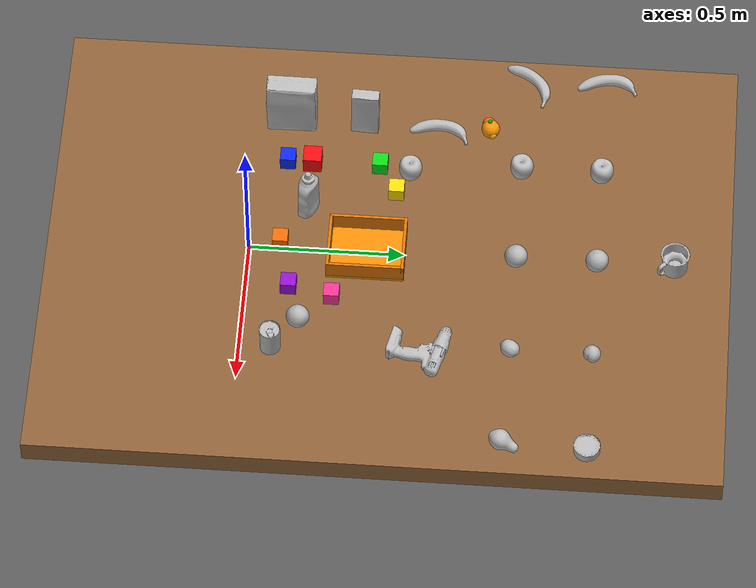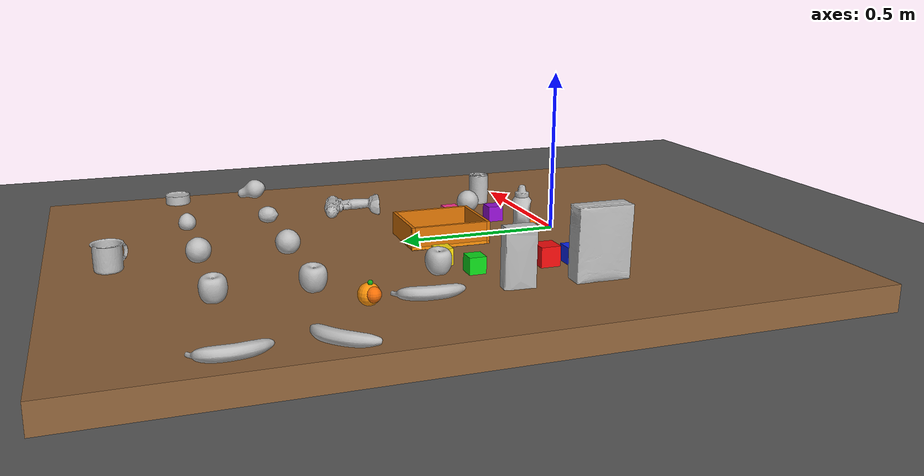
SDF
<?xml version="1.0"?>
<sdf version="1.7">
  <world name="ur3_pick_place">
    <physics name="baseline_physics" type="ode">
      <max_step_size>0.001</max_step_size>
      <real_time_factor>1.0</real_time_factor>
      <gravity>0 0 -9.81</gravity>
    </physics>

    <plugin filename="libignition-gazebo-physics-system.so"
            name="ignition::gazebo::systems::Physics"/>
    <plugin filename="libignition-gazebo-user-commands-system.so"
            name="ignition::gazebo::systems::UserCommands"/>
    <plugin filename="libignition-gazebo-scene-broadcaster-system.so"
            name="ignition::gazebo::systems::SceneBroadcaster"/>
    <plugin filename="libignition-gazebo-sensors-system.so"
            name="ignition::gazebo::systems::Sensors">
      <render_engine>ogre2</render_engine>
    </plugin>
    <plugin filename="libignition-gazebo-contact-system.so"
            name="ignition::gazebo::systems::Contact"/>

    <scene>
      <ambient>0.45 0.45 0.45 1</ambient>
      <background>0.75 0.80 0.85 1</background>
      <shadows>true</shadows>
    </scene>

    <light name="key_light" type="directional">
      <pose>0 0 2 0 0 0</pose>
      <cast_shadows>true</cast_shadows>
      <diffuse>0.9 0.9 0.9 1</diffuse>
      <specular>0.2 0.2 0.2 1</specular>
      <direction>-0.4 0.2 -1.0</direction>
    </light>

    <model name="ground_plane">
      <static>true</static>
      <pose>0 0 -0.081 0 0 0</pose>
      <link name="link">
        <collision name="collision">
          <geometry><plane><normal>0 0 1</normal><size>10 10</size></plane></geometry>
        </collision>
        <visual name="visual">
          <geometry><plane><normal>0 0 1</normal><size>10 10</size></plane></geometry>
          <material><ambient>0.25 0.25 0.25 1</ambient><diffuse>0.35 0.35 0.35 1</diffuse></material>
        </visual>
      </link>
      <plugin filename="ignition-gazebo-label-system" name="ignition::gazebo::systems::Label"><label>41</label></plugin>
    </model>

    <model name="work_table">
      <static>true</static>
      <pose>0 0.45 -0.04 0 0 0</pose>
      <link name="table_link">
        <collision name="collision">
          <geometry><box><size>1.6 2.2 0.08</size></box></geometry>
        </collision>
        <visual name="visual">
          <geometry><box><size>1.6 2.2 0.08</size></box></geometry>
          <material><ambient>0.45 0.30 0.18 1</ambient><diffuse>0.55 0.38 0.22 1</diffuse></material>
        </visual>
      </link>
      <plugin filename="ignition-gazebo-label-system" name="ignition::gazebo::systems::Label"><label>40</label></plugin>
    </model>

    <model name="red_cube">
      <!-- Pick slot: left of the robot (-X) and forward (+Y). -->
      <pose>-0.34 0.18 0.03 0 0 0</pose>
      <link name="cube_link">
        <inertial><mass>0.08</mass><inertia><ixx>0.000048</ixx><iyy>0.000048</iyy><izz>0.000048</izz></inertia></inertial>
        <collision name="collision">
          <geometry><box><size>0.06 0.06 0.06</size></box></geometry>
          <surface><friction><ode><mu>1.2</mu><mu2>1.2</mu2></ode></friction></surface>
        </collision>
        <visual name="visual">
          <geometry><box><size>0.06 0.06 0.06</size></box></geometry>
          <material><ambient>0.8 0.03 0.03 1</ambient><diffuse>0.95 0.05 0.05 1</diffuse></material>
        </visual>
      </link>
      <!-- Ground-truth oracle for perception-layer validation. -->
      <plugin filename="ignition-gazebo-pose-publisher-system"
              name="gz::sim::systems::PosePublisher">
        <publish_link_pose>false</publish_link_pose>
        <publish_collision_pose>false</publish_collision_pose>
        <publish_visual_pose>false</publish_visual_pose>
        <publish_nested_model_pose>false</publish_nested_model_pose>
        <use_pose_vector_msg>true</use_pose_vector_msg>
        <static_publisher>false</static_publisher>
        <update_frequency>15</update_frequency>
      </plugin>
      <plugin filename="ignition-gazebo-label-system" name="ignition::gazebo::systems::Label"><label>1</label></plugin>
    </model>

    <model name="blue_cube">
      <pose>-0.34 0.10 0.025 0 0 0</pose>
      <link name="cube_link">
        <inertial><mass>0.06</mass><inertia><ixx>0.000025</ixx><iyy>0.000025</iyy><izz>0.000025</izz></inertia></inertial>
        <collision name="collision"><geometry><box><size>0.05 0.05 0.05</size></box></geometry></collision>
        <visual name="visual"><geometry><box><size>0.05 0.05 0.05</size></box></geometry><material><ambient>0.03 0.10 0.8 1</ambient><diffuse>0.05 0.15 0.95 1</diffuse></material></visual>
      </link>
      <plugin filename="ignition-gazebo-label-system" name="ignition::gazebo::systems::Label"><label>2</label></plugin>
    </model>

    <model name="green_cube">
      <pose>-0.34 0.40 0.025 0 0 0</pose>
      <link name="cube_link">
        <inertial><mass>0.06</mass><inertia><ixx>0.000025</ixx><iyy>0.000025</iyy><izz>0.000025</izz></inertia></inertial>
        <collision name="collision"><geometry><box><size>0.05 0.05 0.05</size></box></geometry></collision>
        <visual name="visual"><geometry><box><size>0.05 0.05 0.05</size></box></geometry><material><ambient>0.03 0.65 0.08 1</ambient><diffuse>0.05 0.85 0.10 1</diffuse></material></visual>
      </link>
      <plugin filename="ignition-gazebo-label-system" name="ignition::gazebo::systems::Label"><label>3</label></plugin>
    </model>

    <model name="yellow_cube">
      <pose>-0.24 0.46 0.025 0 0 0</pose>
      <link name="cube_link">
        <inertial><mass>0.06</mass><inertia><ixx>0.000025</ixx><iyy>0.000025</iyy><izz>0.000025</izz></inertia></inertial>
        <collision name="collision"><geometry><box><size>0.05 0.05 0.05</size></box></geometry></collision>
        <visual name="visual"><geometry><box><size>0.05 0.05 0.05</size></box></geometry><material><ambient>0.80 0.68 0.02 1</ambient><diffuse>0.98 0.86 0.04 1</diffuse></material></visual>
      </link>
      <plugin filename="ignition-gazebo-label-system" name="ignition::gazebo::systems::Label"><label>4</label></plugin>
    </model>

    <model name="orange_cube">
      <pose>-0.02 0.10 0.025 0 0 0</pose>
      <link name="cube_link">
        <inertial><mass>0.06</mass><inertia><ixx>0.000025</ixx><iyy>0.000025</iyy><izz>0.000025</izz></inertia></inertial>
        <collision name="collision"><geometry><box><size>0.05 0.05 0.05</size></box></geometry></collision>
        <visual name="visual"><geometry><box><size>0.05 0.05 0.05</size></box></geometry><material><ambient>0.88 0.28 0.01 1</ambient><diffuse>1.00 0.42 0.02 1</diffuse></material></visual>
      </link>
      <plugin filename="ignition-gazebo-label-system" name="ignition::gazebo::systems::Label"><label>5</label></plugin>
    </model>

    <model name="purple_cube">
      <pose>0.15 0.14 0.025 0 0 0</pose>
      <link name="cube_link">
        <inertial><mass>0.06</mass><inertia><ixx>0.000025</ixx><iyy>0.000025</iyy><izz>0.000025</izz></inertia></inertial>
        <collision name="collision"><geometry><box><size>0.05 0.05 0.05</size></box></geometry></collision>
        <visual name="visual"><geometry><box><size>0.05 0.05 0.05</size></box></geometry><material><ambient>0.42 0.03 0.62 1</ambient><diffuse>0.58 0.06 0.82 1</diffuse></material></visual>
      </link>
      <plugin filename="ignition-gazebo-label-system" name="ignition::gazebo::systems::Label"><label>6</label></plugin>
    </model>

    <model name="pink_cube">
      <pose>0.18 0.28 0.025 0 0 0</pose>
      <link name="cube_link">
        <inertial><mass>0.06</mass><inertia><ixx>0.000025</ixx><iyy>0.000025</iyy><izz>0.000025</izz></inertia></inertial>
        <collision name="collision"><geometry><box><size>0.05 0.05 0.05</size></box></geometry></collision>
        <visual name="visual"><geometry><box><size>0.05 0.05 0.05</size></box></geometry><material><ambient>0.88 0.10 0.42 1</ambient><diffuse>1.00 0.20 0.58 1</diffuse></material></visual>
      </link>
      <plugin filename="ignition-gazebo-label-system" name="ignition::gazebo::systems::Label"><label>7</label></plugin>
    </model>

    <!-- Selected CC BY 4.0 meshes from ai-habitat/ycb.  Visual origins are
         re-centered here; lightweight primitive collisions keep Gazebo fast. -->
    <model name="ycb_cracker_box">
      <pose>-0.50 0.10 0.106710 0 0 0</pose>
      <link name="object_link">
        <inertial><mass>0.18</mass><inertia><ixx>0.00108</ixx><iyy>0.00076</iyy><izz>0.00048</izz></inertia></inertial>
        <collision name="collision"><geometry><box><size>0.071720 0.163986 0.213421</size></box></geometry><surface><friction><ode><mu>1.1</mu><mu2>1.1</mu2></ode></friction></surface></collision>
        <visual name="ycb_visual"><pose>0.012893 0.014149 -0.103525 0 0 0</pose><geometry><mesh><uri>../models/ycb/003_cracker_box/003_cracker_box.obj</uri></mesh></geometry></visual>
      </link>
      <plugin filename="ignition-gazebo-pose-publisher-system" name="gz::sim::systems::PosePublisher"><publish_link_pose>false</publish_link_pose><publish_collision_pose>false</publish_collision_pose><publish_visual_pose>false</publish_visual_pose><publish_nested_model_pose>false</publish_nested_model_pose><use_pose_vector_msg>true</use_pose_vector_msg><static_publisher>false</static_publisher><update_frequency>15</update_frequency></plugin>
      <plugin filename="ignition-gazebo-label-system" name="ignition::gazebo::systems::Label"><label>21</label></plugin>
    </model>

    <model name="ycb_sugar_box">
      <pose>-0.50 0.34 0.088107 0 0 0</pose>
      <link name="object_link">
        <inertial><mass>0.15</mass><inertia><ixx>0.00050</ixx><iyy>0.00042</iyy><izz>0.00014</izz></inertia></inertial>
        <collision name="collision"><geometry><box><size>0.049450 0.093374 0.176214</size></box></geometry><surface><friction><ode><mu>1.1</mu><mu2>1.1</mu2></ode></friction></surface></collision>
        <visual name="ycb_visual"><pose>0.007099 0.016887 -0.088023 0 0 0</pose><geometry><mesh><uri>../models/ycb/004_sugar_box/004_sugar_box.obj</uri></mesh></geometry></visual>
      </link>
      <plugin filename="ignition-gazebo-pose-publisher-system" name="gz::sim::systems::PosePublisher"><publish_link_pose>false</publish_link_pose><publish_collision_pose>false</publish_collision_pose><publish_visual_pose>false</publish_visual_pose><publish_nested_model_pose>false</publish_nested_model_pose><use_pose_vector_msg>true</use_pose_vector_msg><static_publisher>false</static_publisher><update_frequency>15</update_frequency></plugin>
      <plugin filename="ignition-gazebo-label-system" name="ignition::gazebo::systems::Label"><label>22</label></plugin>
    </model>

    <model name="ycb_tomato_soup_can">
      <pose>0.38 0.10 0.050948 0 0 0</pose>
      <link name="object_link">
        <inertial><mass>0.12</mass><inertia><ixx>0.00013</ixx><iyy>0.00013</iyy><izz>0.00014</izz></inertia></inertial>
        <collision name="collision"><geometry><cylinder><radius>0.03395</radius><length>0.101895</length></cylinder></geometry><surface><friction><ode><mu>1.1</mu><mu2>1.1</mu2></ode></friction></surface></collision>
        <visual name="ycb_visual"><pose>0.009150 -0.084021 -0.050990 0 0 0</pose><geometry><mesh><uri>../models/ycb/005_tomato_soup_can/005_tomato_soup_can.obj</uri></mesh></geometry></visual>
      </link>
      <plugin filename="ignition-gazebo-pose-publisher-system" name="gz::sim::systems::PosePublisher"><publish_link_pose>false</publish_link_pose><publish_collision_pose>false</publish_collision_pose><publish_visual_pose>false</publish_visual_pose><publish_nested_model_pose>false</publish_nested_model_pose><use_pose_vector_msg>true</use_pose_vector_msg><static_publisher>false</static_publisher><update_frequency>15</update_frequency></plugin>
      <plugin filename="ignition-gazebo-label-system" name="ignition::gazebo::systems::Label"><label>23</label></plugin>
    </model>

    <model name="ycb_mustard_bottle">
      <!-- Default target is isolated inside the calibrated wrist-camera workspace. -->
      <pose>-0.165 0.18 0.095695 0 0 0</pose>
      <link name="object_link">
        <inertial><mass>0.18</mass><inertia><ixx>0.00061</ixx><iyy>0.00069</iyy><izz>0.00021</izz></inertia></inertial>
        <!-- The main bottle body is approximated by a graspable cylinder;
             DINO/RGB-D still observes the full original visual geometry. -->
        <collision name="collision"><geometry><cylinder><radius>0.030</radius><length>0.185</length></cylinder></geometry><surface><friction><ode><mu>1.1</mu><mu2>1.1</mu2></ode></friction></surface></collision>
        <visual name="ycb_visual"><pose>0.015323 0.023535 -0.092468 0 0 0</pose><geometry><mesh><uri>../models/ycb/006_mustard_bottle/006_mustard_bottle.obj</uri></mesh></geometry></visual>
      </link>
      <plugin filename="ignition-gazebo-pose-publisher-system" name="gz::sim::systems::PosePublisher"><publish_link_pose>false</publish_link_pose><publish_collision_pose>false</publish_collision_pose><publish_visual_pose>false</publish_visual_pose><publish_nested_model_pose>false</publish_nested_model_pose><use_pose_vector_msg>true</use_pose_vector_msg><static_publisher>false</static_publisher><update_frequency>15</update_frequency></plugin>
      <plugin filename="ignition-gazebo-label-system" name="ignition::gazebo::systems::Label"><label>24</label></plugin>
    </model>

    <model name="ycb_banana">
      <pose>-0.48 0.58 0.018376 0 0 0.25</pose>
      <link name="object_link">
        <inertial><mass>0.12</mass><inertia><ixx>0.00033</ixx><iyy>0.00013</iyy><izz>0.00044</izz></inertia></inertial>
        <collision name="collision"><geometry><box><size>0.108971 0.178395 0.036752</size></box></geometry><surface><friction><ode><mu>1.1</mu><mu2>1.1</mu2></ode></friction></surface></collision>
        <visual name="ycb_visual"><pose>-0.011491 0.007339 -0.017956 0 0 0</pose><geometry><mesh><uri>../models/ycb/011_banana/011_banana.obj</uri></mesh></geometry></visual>
      </link>
      <plugin filename="ignition-gazebo-pose-publisher-system" name="gz::sim::systems::PosePublisher"><publish_link_pose>false</publish_link_pose><publish_collision_pose>false</publish_collision_pose><publish_visual_pose>false</publish_visual_pose><publish_nested_model_pose>false</publish_nested_model_pose><use_pose_vector_msg>true</use_pose_vector_msg><static_publisher>false</static_publisher><update_frequency>15</update_frequency></plugin>
      <plugin filename="ignition-gazebo-label-system" name="ignition::gazebo::systems::Label"><label>25</label></plugin>
    </model>

    <model name="ycb_apple">
      <pose>-0.32 0.50 0.035953 0 0 0</pose>
      <link name="object_link">
        <inertial><mass>0.12</mass><inertia><ixx>0.00007</ixx><iyy>0.00007</iyy><izz>0.00007</izz></inertia></inertial>
        <collision name="collision"><geometry><sphere><radius>0.03771</radius></sphere></geometry><surface><friction><ode><mu>1.1</mu><mu2>1.1</mu2></ode></friction></surface></collision>
        <visual name="ycb_visual"><pose>-0.000863 0.003786 -0.035541 0 0 0</pose><geometry><mesh><uri>../models/ycb/013_apple/013_apple.obj</uri></mesh></geometry></visual>
      </link>
      <plugin filename="ignition-gazebo-pose-publisher-system" name="gz::sim::systems::PosePublisher"><publish_link_pose>false</publish_link_pose><publish_collision_pose>false</publish_collision_pose><publish_visual_pose>false</publish_visual_pose><publish_nested_model_pose>false</publish_nested_model_pose><use_pose_vector_msg>true</use_pose_vector_msg><static_publisher>false</static_publisher><update_frequency>15</update_frequency></plugin>
      <plugin filename="ignition-gazebo-label-system" name="ignition::gazebo::systems::Label"><label>26</label></plugin>
    </model>

    <model name="ycb_orange">
      <!-- Reset at the collision-sphere support height.  The old mesh-derived
           z=0.035684 penetrated the table by 1.3 mm and injected a rolling
           impulse as soon as physics resumed. -->
      <pose>0.28 0.18 0.037010 0 0 0</pose>
      <link name="object_link">
        <inertial><mass>0.13</mass><inertia><ixx>0.00007</ixx><iyy>0.00007</iyy><izz>0.00007</izz></inertia></inertial>
        <velocity_decay><linear>0.25</linear><angular>0.80</angular></velocity_decay>
        <collision name="collision"><geometry><sphere><radius>0.03701</radius></sphere></geometry><surface><friction><ode><mu>1.5</mu><mu2>1.5</mu2></ode></friction></surface></collision>
        <visual name="ycb_visual"><pose>0.006944 0.018358 -0.035408 0 0 0</pose><geometry><mesh><uri>../models/ycb/017_orange/017_orange.obj</uri></mesh></geometry></visual>
      </link>
      <plugin filename="ignition-gazebo-pose-publisher-system" name="gz::sim::systems::PosePublisher"><publish_link_pose>false</publish_link_pose><publish_collision_pose>false</publish_collision_pose><publish_visual_pose>false</publish_visual_pose><publish_nested_model_pose>false</publish_nested_model_pose><use_pose_vector_msg>true</use_pose_vector_msg><static_publisher>false</static_publisher><update_frequency>15</update_frequency></plugin>
      <plugin filename="ignition-gazebo-label-system" name="ignition::gazebo::systems::Label"><label>27</label></plugin>
    </model>

    <model name="ycb_power_drill">
      <pose>0.36 0.57 0.028689 0 0 -0.25</pose>
      <link name="object_link">
        <inertial><mass>0.45</mass><inertia><ixx>0.00137</ixx><iyy>0.00139</iyy><izz>0.00258</izz></inertia></inertial>
        <collision name="collision"><geometry><box><size>0.183995 0.187244 0.057377</size></box></geometry><surface><friction><ode><mu>1.1</mu><mu2>1.1</mu2></ode></friction></surface></collision>
        <visual name="ycb_visual"><pose>0.045866 -0.010493 -0.025266 0 0 0</pose><geometry><mesh><uri>../models/ycb/035_power_drill/035_power_drill.obj</uri></mesh></geometry></visual>
      </link>
      <plugin filename="ignition-gazebo-pose-publisher-system" name="gz::sim::systems::PosePublisher"><publish_link_pose>false</publish_link_pose><publish_collision_pose>false</publish_collision_pose><publish_visual_pose>false</publish_visual_pose><publish_nested_model_pose>false</publish_nested_model_pose><use_pose_vector_msg>true</use_pose_vector_msg><static_publisher>false</static_publisher><update_frequency>15</update_frequency></plugin>
      <plugin filename="ignition-gazebo-label-system" name="ignition::gazebo::systems::Label"><label>28</label></plugin>
    </model>

    <model name="mango">
      <pose>-0.50 0.75 0.030 0 0 0.35</pose>
      <link name="mango_link">
        <inertial><mass>0.16</mass><inertia><ixx>0.000060</ixx><iyy>0.000060</iyy><izz>0.000060</izz></inertia></inertial>
        <collision name="fruit_collision"><geometry><sphere><radius>0.030</radius></sphere></geometry></collision>
        <visual name="mango_body"><geometry><sphere><radius>0.030</radius></sphere></geometry><material><ambient>0.92 0.38 0.01 1</ambient><diffuse>1.0 0.58 0.03 1</diffuse></material></visual>
        <visual name="mango_lobe"><pose>-0.019 0 0.004 0 0 0</pose><geometry><sphere><radius>0.021</radius></sphere></geometry><material><ambient>0.74 0.25 0.01 1</ambient><diffuse>0.95 0.43 0.02 1</diffuse></material></visual>
        <visual name="mango_tip"><pose>0.021 0 -0.005 0 0 0</pose><geometry><sphere><radius>0.014</radius></sphere></geometry><material><ambient>0.96 0.56 0.03 1</ambient><diffuse>1.0 0.67 0.05 1</diffuse></material></visual>
        <visual name="mango_leaf"><pose>-0.006 0 0.032 0 0.45 0</pose><geometry><sphere><radius>0.007</radius></sphere></geometry><material><ambient>0.05 0.40 0.04 1</ambient><diffuse>0.07 0.65 0.07 1</diffuse></material></visual>
      </link>
      <plugin filename="ignition-gazebo-label-system" name="ignition::gazebo::systems::Label"><label>29</label></plugin>
    </model>

    <!-- The tray is directly in front of the robot according to the same +Y
         convention, centered on the robot's forward axis. -->
    <model name="target_bin">
      <static>true</static>
      <pose>0 0.38 0 0 0 0</pose>
      <link name="bin_link">
        <collision name="floor_collision"><pose>0 0 0.005 0 0 0</pose><geometry><box><size>0.20 0.25 0.01</size></box></geometry></collision>
        <visual name="floor_visual"><pose>0 0 0.005 0 0 0</pose><geometry><box><size>0.20 0.25 0.01</size></box></geometry><material><ambient>0.85 0.45 0.02 1</ambient><diffuse>0.95 0.55 0.03 1</diffuse></material></visual>
        <collision name="front_collision"><pose>0.095 0 0.035 0 0 0</pose><geometry><box><size>0.01 0.25 0.07</size></box></geometry></collision>
        <visual name="front_visual"><pose>0.095 0 0.035 0 0 0</pose><geometry><box><size>0.01 0.25 0.07</size></box></geometry><material><ambient>0.85 0.45 0.02 1</ambient></material></visual>
        <collision name="back_collision"><pose>-0.095 0 0.035 0 0 0</pose><geometry><box><size>0.01 0.25 0.07</size></box></geometry></collision>
        <visual name="back_visual"><pose>-0.095 0 0.035 0 0 0</pose><geometry><box><size>0.01 0.25 0.07</size></box></geometry><material><ambient>0.85 0.45 0.02 1</ambient></material></visual>
        <collision name="left_collision"><pose>0 0.12 0.035 0 0 0</pose><geometry><box><size>0.20 0.01 0.07</size></box></geometry></collision>
        <visual name="left_visual"><pose>0 0.12 0.035 0 0 0</pose><geometry><box><size>0.20 0.01 0.07</size></box></geometry><material><ambient>0.85 0.45 0.02 1</ambient></material></visual>
        <collision name="right_collision"><pose>0 -0.12 0.035 0 0 0</pose><geometry><box><size>0.20 0.01 0.07</size></box></geometry></collision>
        <visual name="right_visual"><pose>0 -0.12 0.035 0 0 0</pose><geometry><box><size>0.20 0.01 0.07</size></box></geometry><material><ambient>0.85 0.45 0.02 1</ambient></material></visual>
      </link>
      <plugin filename="ignition-gazebo-label-system" name="ignition::gazebo::systems::Label"><label>32</label></plugin>
    </model>

    <!-- YCB inventory V2 additions. The source ur3_pick_place.sdf is left unchanged. The derived scene removes cup, kettle and omits bleach cleanser by explicit user request. -->
    <model name="ycb_banana_02">
      <pose>-0.700000 0.860000 0.018876 0.000000 0.000000 -0.450000</pose>
      <link name="object_link">
        <inertial><mass>0.120000</mass><inertia><ixx>0.000331755</ixx><iyy>0.000132254</iyy><izz>0.000436995</izz></inertia></inertial>
        <velocity_decay><linear>0.10</linear><angular>0.25</angular></velocity_decay>
        <collision name="collision">
          <geometry><box><size>0.108971 0.178395 0.036752</size></box></geometry>
          <surface><friction><ode><mu>1.2</mu><mu2>1.2</mu2></ode></friction></surface>
        </collision>
        <visual name="ycb_visual">
          <pose>-0.011491 0.007339 -0.017956 0.000000 0.000000 0.000000</pose>
          <geometry><mesh><uri>../models/ycb/011_banana/011_banana.obj</uri></mesh></geometry>
        </visual>
      </link>
      <plugin filename="ignition-gazebo-pose-publisher-system" name="gz::sim::systems::PosePublisher"><publish_link_pose>false</publish_link_pose><publish_collision_pose>false</publish_collision_pose><publish_visual_pose>false</publish_visual_pose><publish_nested_model_pose>false</publish_nested_model_pose><use_pose_vector_msg>true</use_pose_vector_msg><static_publisher>false</static_publisher><update_frequency>15</update_frequency></plugin>
      <plugin filename="ignition-gazebo-label-system" name="ignition::gazebo::systems::Label"><label>101</label></plugin>
    </model>

    <model name="ycb_apple_02">
      <pose>-0.350000 0.860000 0.036453 0.000000 0.000000 0.200000</pose>
      <link name="object_link">
        <inertial><mass>0.120000</mass><inertia><ixx>0.000107716</ixx><iyy>0.000108586</iyy><izz>0.000112891</izz></inertia></inertial>
        <velocity_decay><linear>0.10</linear><angular>0.25</angular></velocity_decay>
        <collision name="collision">
          <geometry><box><size>0.075419 0.074840 0.071907</size></box></geometry>
          <surface><friction><ode><mu>1.2</mu><mu2>1.2</mu2></ode></friction></surface>
        </collision>
        <visual name="ycb_visual">
          <pose>-0.000863 0.003786 -0.035541 0.000000 0.000000 0.000000</pose>
          <geometry><mesh><uri>../models/ycb/013_apple/013_apple.obj</uri></mesh></geometry>
        </visual>
      </link>
      <plugin filename="ignition-gazebo-pose-publisher-system" name="gz::sim::systems::PosePublisher"><publish_link_pose>false</publish_link_pose><publish_collision_pose>false</publish_collision_pose><publish_visual_pose>false</publish_visual_pose><publish_nested_model_pose>false</publish_nested_model_pose><use_pose_vector_msg>true</use_pose_vector_msg><static_publisher>false</static_publisher><update_frequency>15</update_frequency></plugin>
      <plugin filename="ignition-gazebo-label-system" name="ignition::gazebo::systems::Label"><label>102</label></plugin>
    </model>

    <model name="ycb_orange_02">
      <pose>0.000000 0.860000 0.036184 0.000000 0.000000 -0.200000</pose>
      <link name="object_link">
        <inertial><mass>0.130000</mass><inertia><ixx>0.000114516</ixx><iyy>0.000111543</iyy><izz>0.000115702</izz></inertia></inertial>
        <velocity_decay><linear>0.10</linear><angular>0.25</angular></velocity_decay>
        <collision name="collision">
          <geometry><box><size>0.072131 0.074009 0.071368</size></box></geometry>
          <surface><friction><ode><mu>1.2</mu><mu2>1.2</mu2></ode></friction></surface>
        </collision>
        <visual name="ycb_visual">
          <pose>0.006944 0.018358 -0.035408 0.000000 0.000000 0.000000</pose>
          <geometry><mesh><uri>../models/ycb/017_orange/017_orange.obj</uri></mesh></geometry>
        </visual>
      </link>
      <plugin filename="ignition-gazebo-pose-publisher-system" name="gz::sim::systems::PosePublisher"><publish_link_pose>false</publish_link_pose><publish_collision_pose>false</publish_collision_pose><publish_visual_pose>false</publish_visual_pose><publish_nested_model_pose>false</publish_nested_model_pose><use_pose_vector_msg>true</use_pose_vector_msg><static_publisher>false</static_publisher><update_frequency>15</update_frequency></plugin>
      <plugin filename="ignition-gazebo-label-system" name="ignition::gazebo::systems::Label"><label>103</label></plugin>
    </model>

    <model name="ycb_lemon">
      <pose>0.350000 0.860000 0.026999 0.000000 0.000000 0.350000</pose>
      <link name="object_link">
        <inertial><mass>0.100000</mass><inertia><ixx>0.000052728</ixx><iyy>0.000053983</iyy><izz>0.000059897</izz></inertia></inertial>
        <velocity_decay><linear>0.10</linear><angular>0.25</angular></velocity_decay>
        <collision name="collision">
          <geometry><box><size>0.060573 0.059317 0.052999</size></box></geometry>
          <surface><friction><ode><mu>1.2</mu><mu2>1.2</mu2></ode></friction></surface>
        </collision>
        <visual name="ycb_visual">
          <pose>0.010581 -0.021648 -0.026273 0.000000 0.000000 0.000000</pose>
          <geometry><mesh><uri>../models/ycb/014_lemon/014_lemon.obj</uri></mesh></geometry>
        </visual>
      </link>
      <plugin filename="ignition-gazebo-pose-publisher-system" name="gz::sim::systems::PosePublisher"><publish_link_pose>false</publish_link_pose><publish_collision_pose>false</publish_collision_pose><publish_visual_pose>false</publish_visual_pose><publish_nested_model_pose>false</publish_nested_model_pose><use_pose_vector_msg>true</use_pose_vector_msg><static_publisher>false</static_publisher><update_frequency>15</update_frequency></plugin>
      <plugin filename="ignition-gazebo-label-system" name="ignition::gazebo::systems::Label"><label>104</label></plugin>
    </model>

    <model name="ycb_pear">
      <pose>0.700000 0.860000 0.033322 0.000000 0.000000 -0.300000</pose>
      <link name="object_link">
        <inertial><mass>0.150000</mass><inertia><ixx>0.000180074</ixx><iyy>0.000109202</iyy><izz>0.000181544</izz></inertia></inertial>
        <velocity_decay><linear>0.10</linear><angular>0.25</angular></velocity_decay>
        <collision name="collision">
          <geometry><box><size>0.066535 0.100482 0.065645</size></box></geometry>
          <surface><friction><ode><mu>1.2</mu><mu2>1.2</mu2></ode></friction></surface>
        </collision>
        <visual name="ycb_visual">
          <pose>0.033314 -0.018008 -0.032663 0.000000 0.000000 0.000000</pose>
          <geometry><mesh><uri>../models/ycb/016_pear/016_pear.obj</uri></mesh></geometry>
        </visual>
      </link>
      <plugin filename="ignition-gazebo-pose-publisher-system" name="gz::sim::systems::PosePublisher"><publish_link_pose>false</publish_link_pose><publish_collision_pose>false</publish_collision_pose><publish_visual_pose>false</publish_visual_pose><publish_nested_model_pose>false</publish_nested_model_pose><use_pose_vector_msg>true</use_pose_vector_msg><static_publisher>false</static_publisher><update_frequency>15</update_frequency></plugin>
      <plugin filename="ignition-gazebo-label-system" name="ignition::gazebo::systems::Label"><label>105</label></plugin>
    </model>

    <model name="ycb_banana_03">
      <pose>-0.700000 1.120000 0.018876 0.000000 0.000000 0.400000</pose>
      <link name="object_link">
        <inertial><mass>0.120000</mass><inertia><ixx>0.000331755</ixx><iyy>0.000132254</iyy><izz>0.000436995</izz></inertia></inertial>
        <velocity_decay><linear>0.10</linear><angular>0.25</angular></velocity_decay>
        <collision name="collision">
          <geometry><box><size>0.108971 0.178395 0.036752</size></box></geometry>
          <surface><friction><ode><mu>1.2</mu><mu2>1.2</mu2></ode></friction></surface>
        </collision>
        <visual name="ycb_visual">
          <pose>-0.011491 0.007339 -0.017956 0.000000 0.000000 0.000000</pose>
          <geometry><mesh><uri>../models/ycb/011_banana/011_banana.obj</uri></mesh></geometry>
        </visual>
      </link>
      <plugin filename="ignition-gazebo-pose-publisher-system" name="gz::sim::systems::PosePublisher"><publish_link_pose>false</publish_link_pose><publish_collision_pose>false</publish_collision_pose><publish_visual_pose>false</publish_visual_pose><publish_nested_model_pose>false</publish_nested_model_pose><use_pose_vector_msg>true</use_pose_vector_msg><static_publisher>false</static_publisher><update_frequency>15</update_frequency></plugin>
      <plugin filename="ignition-gazebo-label-system" name="ignition::gazebo::systems::Label"><label>106</label></plugin>
    </model>

    <model name="ycb_apple_03">
      <pose>-0.350000 1.120000 0.036453 0.000000 0.000000 -0.350000</pose>
      <link name="object_link">
        <inertial><mass>0.120000</mass><inertia><ixx>0.000107716</ixx><iyy>0.000108586</iyy><izz>0.000112891</izz></inertia></inertial>
        <velocity_decay><linear>0.10</linear><angular>0.25</angular></velocity_decay>
        <collision name="collision">
          <geometry><box><size>0.075419 0.074840 0.071907</size></box></geometry>
          <surface><friction><ode><mu>1.2</mu><mu2>1.2</mu2></ode></friction></surface>
        </collision>
        <visual name="ycb_visual">
          <pose>-0.000863 0.003786 -0.035541 0.000000 0.000000 0.000000</pose>
          <geometry><mesh><uri>../models/ycb/013_apple/013_apple.obj</uri></mesh></geometry>
        </visual>
      </link>
      <plugin filename="ignition-gazebo-pose-publisher-system" name="gz::sim::systems::PosePublisher"><publish_link_pose>false</publish_link_pose><publish_collision_pose>false</publish_collision_pose><publish_visual_pose>false</publish_visual_pose><publish_nested_model_pose>false</publish_nested_model_pose><use_pose_vector_msg>true</use_pose_vector_msg><static_publisher>false</static_publisher><update_frequency>15</update_frequency></plugin>
      <plugin filename="ignition-gazebo-label-system" name="ignition::gazebo::systems::Label"><label>107</label></plugin>
    </model>

    <model name="ycb_orange_03">
      <pose>0.000000 1.120000 0.036184 0.000000 0.000000 0.400000</pose>
      <link name="object_link">
        <inertial><mass>0.130000</mass><inertia><ixx>0.000114516</ixx><iyy>0.000111543</iyy><izz>0.000115702</izz></inertia></inertial>
        <velocity_decay><linear>0.10</linear><angular>0.25</angular></velocity_decay>
        <collision name="collision">
          <geometry><box><size>0.072131 0.074009 0.071368</size></box></geometry>
          <surface><friction><ode><mu>1.2</mu><mu2>1.2</mu2></ode></friction></surface>
        </collision>
        <visual name="ycb_visual">
          <pose>0.006944 0.018358 -0.035408 0.000000 0.000000 0.000000</pose>
          <geometry><mesh><uri>../models/ycb/017_orange/017_orange.obj</uri></mesh></geometry>
        </visual>
      </link>
      <plugin filename="ignition-gazebo-pose-publisher-system" name="gz::sim::systems::PosePublisher"><publish_link_pose>false</publish_link_pose><publish_collision_pose>false</publish_collision_pose><publish_visual_pose>false</publish_visual_pose><publish_nested_model_pose>false</publish_nested_model_pose><use_pose_vector_msg>true</use_pose_vector_msg><static_publisher>false</static_publisher><update_frequency>15</update_frequency></plugin>
      <plugin filename="ignition-gazebo-label-system" name="ignition::gazebo::systems::Label"><label>108</label></plugin>
    </model>

    <model name="ycb_plum">
      <pose>0.350000 1.120000 0.027025 0.000000 0.000000 0.550000</pose>
      <link name="object_link">
        <inertial><mass>0.080000</mass><inertia><ixx>0.000038865</ixx><iyy>0.000040572</iyy><izz>0.000041914</izz></inertia></inertial>
        <velocity_decay><linear>0.10</linear><angular>0.25</angular></velocity_decay>
        <collision name="collision">
          <geometry><box><size>0.057198 0.054914 0.053049</size></box></geometry>
          <surface><friction><ode><mu>1.2</mu><mu2>1.2</mu2></ode></friction></surface>
        </collision>
        <visual name="ycb_visual">
          <pose>0.007799 -0.019438 -0.026225 0.000000 0.000000 0.000000</pose>
          <geometry><mesh><uri>../models/ycb/018_plum/018_plum.obj</uri></mesh></geometry>
        </visual>
      </link>
      <plugin filename="ignition-gazebo-pose-publisher-system" name="gz::sim::systems::PosePublisher"><publish_link_pose>false</publish_link_pose><publish_collision_pose>false</publish_collision_pose><publish_visual_pose>false</publish_visual_pose><publish_nested_model_pose>false</publish_nested_model_pose><use_pose_vector_msg>true</use_pose_vector_msg><static_publisher>false</static_publisher><update_frequency>15</update_frequency></plugin>
      <plugin filename="ignition-gazebo-label-system" name="ignition::gazebo::systems::Label"><label>109</label></plugin>
    </model>

    <model name="ycb_tuna_fish_can">
      <pose>0.700000 1.120000 0.017264 0.000000 0.000000 0.100000</pose>
      <link name="object_link">
        <inertial><mass>0.120000</mass><inertia><ixx>0.000084405</ixx><iyy>0.000084491</iyy><izz>0.000146414</izz></inertia></inertial>
        <velocity_decay><linear>0.10</linear><angular>0.25</angular></velocity_decay>
        <collision name="collision">
          <geometry><box><size>0.085586 0.085536 0.033528</size></box></geometry>
          <surface><friction><ode><mu>1.2</mu><mu2>1.2</mu2></ode></friction></surface>
        </collision>
        <visual name="ycb_visual">
          <pose>0.026034 0.022121 -0.013578 0.000000 0.000000 0.000000</pose>
          <geometry><mesh><uri>../models/ycb/007_tuna_fish_can/007_tuna_fish_can.obj</uri></mesh></geometry>
        </visual>
      </link>
      <plugin filename="ignition-gazebo-pose-publisher-system" name="gz::sim::systems::PosePublisher"><publish_link_pose>false</publish_link_pose><publish_collision_pose>false</publish_collision_pose><publish_visual_pose>false</publish_visual_pose><publish_nested_model_pose>false</publish_nested_model_pose><use_pose_vector_msg>true</use_pose_vector_msg><static_publisher>false</static_publisher><update_frequency>15</update_frequency></plugin>
      <plugin filename="ignition-gazebo-label-system" name="ignition::gazebo::systems::Label"><label>110</label></plugin>
    </model>

    <model name="ycb_mug">
      <pose>0.000000 1.360000 0.041177 0.000000 0.000000 -0.800000</pose>
      <link name="object_link">
        <inertial><mass>0.150000</mass><inertia><ixx>0.000191027</ixx><iyy>0.000253671</iyy><izz>0.000279236</izz></inertia></inertial>
        <velocity_decay><linear>0.10</linear><angular>0.25</angular></velocity_decay>
        <collision name="collision">
          <geometry><box><size>0.116941 0.093079 0.081354</size></box></geometry>
          <surface><friction><ode><mu>1.2</mu><mu2>1.2</mu2></ode></friction></surface>
        </collision>
        <visual name="ycb_visual">
          <pose>0.008853 -0.017342 -0.040107 0.000000 0.000000 0.000000</pose>
          <geometry><mesh><uri>../models/ycb/025_mug/025_mug.obj</uri></mesh></geometry>
        </visual>
      </link>
      <plugin filename="ignition-gazebo-pose-publisher-system" name="gz::sim::systems::PosePublisher"><publish_link_pose>false</publish_link_pose><publish_collision_pose>false</publish_collision_pose><publish_visual_pose>false</publish_visual_pose><publish_nested_model_pose>false</publish_nested_model_pose><use_pose_vector_msg>true</use_pose_vector_msg><static_publisher>false</static_publisher><update_frequency>15</update_frequency></plugin>
      <plugin filename="ignition-gazebo-label-system" name="ignition::gazebo::systems::Label"><label>111</label></plugin>
    </model>
  </world>
</sdf>
